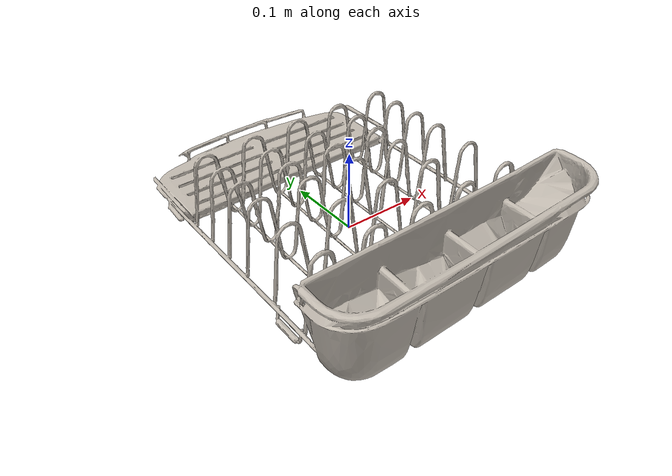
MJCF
<mujoco model="model">
  <default>
    <default class="visual">
      <geom group="2" type="mesh" contype="0" conaffinity="0"/>
    </default>
    <default class="collision">
      <geom group="3" type="mesh"/>
    </default>
  </default>
  <asset>
    <texture type="2d" name="texture" file="texture.png"/>
    <material name="material_0" texture="texture" specular="0.5" shininess="0.5"/>
    <mesh file="model.obj"/>
    <mesh file="model_collision_0.obj"/>
    <mesh file="model_collision_1.obj"/>
    <mesh file="model_collision_2.obj"/>
    <mesh file="model_collision_3.obj"/>
    <mesh file="model_collision_4.obj"/>
    <mesh file="model_collision_5.obj"/>
    <mesh file="model_collision_6.obj"/>
    <mesh file="model_collision_7.obj"/>
    <mesh file="model_collision_8.obj"/>
    <mesh file="model_collision_9.obj"/>
    <mesh file="model_collision_10.obj"/>
    <mesh file="model_collision_11.obj"/>
    <mesh file="model_collision_12.obj"/>
    <mesh file="model_collision_13.obj"/>
    <mesh file="model_collision_14.obj"/>
    <mesh file="model_collision_15.obj"/>
    <mesh file="model_collision_16.obj"/>
    <mesh file="model_collision_17.obj"/>
    <mesh file="model_collision_18.obj"/>
    <mesh file="model_collision_19.obj"/>
    <mesh file="model_collision_20.obj"/>
    <mesh file="model_collision_21.obj"/>
    <mesh file="model_collision_22.obj"/>
    <mesh file="model_collision_23.obj"/>
    <mesh file="model_collision_24.obj"/>
    <mesh file="model_collision_25.obj"/>
    <mesh file="model_collision_26.obj"/>
    <mesh file="model_collision_27.obj"/>
    <mesh file="model_collision_28.obj"/>
    <mesh file="model_collision_29.obj"/>
    <mesh file="model_collision_30.obj"/>
    <mesh file="model_collision_31.obj"/>
    <mesh file="model_collision_32.obj"/>
    <mesh file="model_collision_33.obj"/>
    <mesh file="model_collision_34.obj"/>
    <mesh file="model_collision_35.obj"/>
    <mesh file="model_collision_36.obj"/>
    <mesh file="model_collision_37.obj"/>
    <mesh file="model_collision_38.obj"/>
    <mesh file="model_collision_39.obj"/>
    <mesh file="model_collision_40.obj"/>
    <mesh file="model_collision_41.obj"/>
    <mesh file="model_collision_42.obj"/>
    <mesh file="model_collision_43.obj"/>
    <mesh file="model_collision_44.obj"/>
    <mesh file="model_collision_45.obj"/>
    <mesh file="model_collision_46.obj"/>
    <mesh file="model_collision_47.obj"/>
    <mesh file="model_collision_48.obj"/>
    <mesh file="model_collision_49.obj"/>
    <mesh file="model_collision_50.obj"/>
    <mesh file="model_collision_51.obj"/>
    <mesh file="model_collision_52.obj"/>
    <mesh file="model_collision_53.obj"/>
    <mesh file="model_collision_54.obj"/>
    <mesh file="model_collision_55.obj"/>
    <mesh file="model_collision_56.obj"/>
    <mesh file="model_collision_57.obj"/>
    <mesh file="model_collision_58.obj"/>
    <mesh file="model_collision_59.obj"/>
    <mesh file="model_collision_60.obj"/>
    <mesh file="model_collision_61.obj"/>
    <mesh file="model_collision_62.obj"/>
    <mesh file="model_collision_63.obj"/>
    <mesh file="model_collision_64.obj"/>
    <mesh file="model_collision_65.obj"/>
    <mesh file="model_collision_66.obj"/>
    <mesh file="model_collision_67.obj"/>
    <mesh file="model_collision_68.obj"/>
    <mesh file="model_collision_69.obj"/>
    <mesh file="model_collision_70.obj"/>
    <mesh file="model_collision_71.obj"/>
    <mesh file="model_collision_72.obj"/>
    <mesh file="model_collision_73.obj"/>
    <mesh file="model_collision_74.obj"/>
    <mesh file="model_collision_75.obj"/>
    <mesh file="model_collision_76.obj"/>
    <mesh file="model_collision_77.obj"/>
    <mesh file="model_collision_78.obj"/>
    <mesh file="model_collision_79.obj"/>
    <mesh file="model_collision_80.obj"/>
    <mesh file="model_collision_81.obj"/>
    <mesh file="model_collision_82.obj"/>
    <mesh file="model_collision_83.obj"/>
    <mesh file="model_collision_84.obj"/>
    <mesh file="model_collision_85.obj"/>
    <mesh file="model_collision_86.obj"/>
    <mesh file="model_collision_87.obj"/>
    <mesh file="model_collision_88.obj"/>
    <mesh file="model_collision_89.obj"/>
    <mesh file="model_collision_90.obj"/>
    <mesh file="model_collision_91.obj"/>
    <mesh file="model_collision_92.obj"/>
    <mesh file="model_collision_93.obj"/>
    <mesh file="model_collision_94.obj"/>
    <mesh file="model_collision_95.obj"/>
    <mesh file="model_collision_96.obj"/>
    <mesh file="model_collision_97.obj"/>
    <mesh file="model_collision_98.obj"/>
    <mesh file="model_collision_99.obj"/>
    <mesh file="model_collision_100.obj"/>
    <mesh file="model_collision_101.obj"/>
    <mesh file="model_collision_102.obj"/>
    <mesh file="model_collision_103.obj"/>
    <mesh file="model_collision_104.obj"/>
    <mesh file="model_collision_105.obj"/>
    <mesh file="model_collision_106.obj"/>
    <mesh file="model_collision_107.obj"/>
    <mesh file="model_collision_108.obj"/>
    <mesh file="model_collision_109.obj"/>
    <mesh file="model_collision_110.obj"/>
    <mesh file="model_collision_111.obj"/>
    <mesh file="model_collision_112.obj"/>
    <mesh file="model_collision_113.obj"/>
    <mesh file="model_collision_114.obj"/>
    <mesh file="model_collision_115.obj"/>
    <mesh file="model_collision_116.obj"/>
    <mesh file="model_collision_117.obj"/>
    <mesh file="model_collision_118.obj"/>
    <mesh file="model_collision_119.obj"/>
    <mesh file="model_collision_120.obj"/>
    <mesh file="model_collision_121.obj"/>
    <mesh file="model_collision_122.obj"/>
    <mesh file="model_collision_123.obj"/>
    <mesh file="model_collision_124.obj"/>
    <mesh file="model_collision_125.obj"/>
    <mesh file="model_collision_126.obj"/>
    <mesh file="model_collision_127.obj"/>
    <mesh file="model_collision_128.obj"/>
    <mesh file="model_collision_129.obj"/>
    <mesh file="model_collision_130.obj"/>
    <mesh file="model_collision_131.obj"/>
    <mesh file="model_collision_132.obj"/>
    <mesh file="model_collision_133.obj"/>
    <mesh file="model_collision_134.obj"/>
    <mesh file="model_collision_135.obj"/>
    <mesh file="model_collision_136.obj"/>
    <mesh file="model_collision_137.obj"/>
    <mesh file="model_collision_138.obj"/>
    <mesh file="model_collision_139.obj"/>
    <mesh file="model_collision_140.obj"/>
    <mesh file="model_collision_141.obj"/>
    <mesh file="model_collision_142.obj"/>
    <mesh file="model_collision_143.obj"/>
    <mesh file="model_collision_144.obj"/>
    <mesh file="model_collision_145.obj"/>
    <mesh file="model_collision_146.obj"/>
    <mesh file="model_collision_147.obj"/>
    <mesh file="model_collision_148.obj"/>
  </asset>
  <worldbody>
    <body name="model">
      <freejoint/>
      <geom material="material_0" mesh="model" class="visual"/>
      <geom mesh="model_collision_0" rgba="0.6972261375620378 0.5016032488889515 0.9544041945124212 1" class="collision"/>
      <geom mesh="model_collision_1" rgba="0.6679679687793443 0.9392575528685594 0.4658735522799946 1" class="collision"/>
      <geom mesh="model_collision_2" rgba="0.1453827029904502 0.40744092845967517 0.07989793138121593 1" class="collision"/>
      <geom mesh="model_collision_3" rgba="0.8623111466422981 0.5165504551971322 0.4786232503171015 1" class="collision"/>
      <geom mesh="model_collision_4" rgba="0.9477083832529426 0.2818664488945466 0.5591723239383094 1" class="collision"/>
      <geom mesh="model_collision_5" rgba="0.6649166843170055 0.46660913463735343 0.9001685042311807 1" class="collision"/>
      <geom mesh="model_collision_6" rgba="0.7618692108988531 0.025419864045153173 0.20212448867446653 1" class="collision"/>
      <geom mesh="model_collision_7" rgba="0.2541425772433271 0.33284124666160697 0.06684828904093454 1" class="collision"/>
      <geom mesh="model_collision_8" rgba="0.8638790279399763 0.31008286049438805 0.9582214352043337 1" class="collision"/>
      <geom mesh="model_collision_9" rgba="0.8481403126513923 0.9899220244255867 0.9012400029475611 1" class="collision"/>
      <geom mesh="model_collision_10" rgba="0.6134601114526506 0.7812644838409764 0.3425945387360996 1" class="collision"/>
      <geom mesh="model_collision_11" rgba="0.22218953819966847 0.48938572658495916 0.6525231487523216 1" class="collision"/>
      <geom mesh="model_collision_12" rgba="0.3588326889222123 0.43330550626239617 0.6936918167777775 1" class="collision"/>
      <geom mesh="model_collision_13" rgba="0.15888932649153653 0.8650773636531605 0.11426669520568222 1" class="collision"/>
      <geom mesh="model_collision_14" rgba="0.9250375333283071 0.07516812131073125 0.19751444527300777 1" class="collision"/>
      <geom mesh="model_collision_15" rgba="0.07246994567382936 0.35354141400302286 0.713251328649467 1" class="collision"/>
      <geom mesh="model_collision_16" rgba="0.4518314905981151 0.4932898268777104 0.2788270548570283 1" class="collision"/>
      <geom mesh="model_collision_17" rgba="0.33025591188166237 0.02781623422873869 0.9035735388902696 1" class="collision"/>
      <geom mesh="model_collision_18" rgba="0.5029580158179299 0.07501793642183574 0.3803501553092181 1" class="collision"/>
      <geom mesh="model_collision_19" rgba="0.6785499068048587 0.8824265279602951 0.35854888292898 1" class="collision"/>
      <geom mesh="model_collision_20" rgba="0.844260551131747 0.19743789087942176 0.20911812181464562 1" class="collision"/>
      <geom mesh="model_collision_21" rgba="0.21577350747526935 0.17852052779522376 0.02824911956603826 1" class="collision"/>
      <geom mesh="model_collision_22" rgba="0.6414843260022598 0.4473457458538098 0.997136404003651 1" class="collision"/>
      <geom mesh="model_collision_23" rgba="0.17705400973425367 0.47513840779608796 0.27507588908811365 1" class="collision"/>
      <geom mesh="model_collision_24" rgba="0.8613287846550189 0.4703512380765029 0.5271169994660593 1" class="collision"/>
      <geom mesh="model_collision_25" rgba="0.0854319196957325 0.06511398391837975 0.8910437634154694 1" class="collision"/>
      <geom mesh="model_collision_26" rgba="0.1129412149541611 0.388796699795228 0.8386258379992236 1" class="collision"/>
      <geom mesh="model_collision_27" rgba="0.313775413922613 0.8458137608777493 0.7441178856053182 1" class="collision"/>
      <geom mesh="model_collision_28" rgba="0.5916768148280449 0.9131771642044771 0.7155328990905656 1" class="collision"/>
      <geom mesh="model_collision_29" rgba="0.3758301953558243 0.6151654270821959 0.17883319599354097 1" class="collision"/>
      <geom mesh="model_collision_30" rgba="0.9005395457589973 0.12893772935001835 0.8399084775797421 1" class="collision"/>
      <geom mesh="model_collision_31" rgba="0.5761321374345145 0.5062650580779895 0.5969410067920444 1" class="collision"/>
      <geom mesh="model_collision_32" rgba="0.33120795289454585 0.0548958740351394 0.10588709839794219 1" class="collision"/>
      <geom mesh="model_collision_33" rgba="0.9828209401497767 0.11625597893137263 0.6464528730212972 1" class="collision"/>
      <geom mesh="model_collision_34" rgba="0.9065059034983243 0.8749440861832476 0.27937757995783163 1" class="collision"/>
      <geom mesh="model_collision_35" rgba="0.8093791386906711 0.34250170802189206 0.5529135935940146 1" class="collision"/>
      <geom mesh="model_collision_36" rgba="0.27278188270013715 0.4742089855848517 0.3676420535177872 1" class="collision"/>
      <geom mesh="model_collision_37" rgba="0.6002530576285366 0.9465858944329743 0.66512388474011 1" class="collision"/>
      <geom mesh="model_collision_38" rgba="0.9622239105259734 0.09627881367820457 0.08296348672930132 1" class="collision"/>
      <geom mesh="model_collision_39" rgba="0.964561287196177 0.27153199099186975 0.8577485566950843 1" class="collision"/>
      <geom mesh="model_collision_40" rgba="0.6190955863942912 0.49805554171619604 0.7790044453946614 1" class="collision"/>
      <geom mesh="model_collision_41" rgba="0.6132532408483207 0.1638040912207669 0.9847355649734942 1" class="collision"/>
      <geom mesh="model_collision_42" rgba="0.9001829213739782 0.7596760145443623 0.3935474744991997 1" class="collision"/>
      <geom mesh="model_collision_43" rgba="0.7419923764852715 0.9716106597268732 0.078888109275144 1" class="collision"/>
      <geom mesh="model_collision_44" rgba="0.3011874149822188 0.145236394185694 0.23604809186698583 1" class="collision"/>
      <geom mesh="model_collision_45" rgba="0.17821690177742167 0.16059923404084175 0.09414998707256172 1" class="collision"/>
      <geom mesh="model_collision_46" rgba="0.8331798237799519 0.718695851533787 0.11462644266890598 1" class="collision"/>
      <geom mesh="model_collision_47" rgba="0.9445108755427497 0.414888252407413 0.3411241048436212 1" class="collision"/>
      <geom mesh="model_collision_48" rgba="0.8975411413666976 0.5739936592303218 0.9181648509110809 1" class="collision"/>
      <geom mesh="model_collision_49" rgba="0.08176544643495931 0.22602472542661467 0.15005458895364043 1" class="collision"/>
      <geom mesh="model_collision_50" rgba="0.12099596406027024 0.34881206709163803 0.2422438688268186 1" class="collision"/>
      <geom mesh="model_collision_51" rgba="0.7504684268004972 0.6484879226586683 0.794659471677448 1" class="collision"/>
      <geom mesh="model_collision_52" rgba="0.1724229704493596 0.7730452270134275 0.4102404161939135 1" class="collision"/>
      <geom mesh="model_collision_53" rgba="0.2951858288855326 0.33806457158827685 0.22992220086938964 1" class="collision"/>
      <geom mesh="model_collision_54" rgba="0.33750633947939424 0.045416067351773615 0.35211098319953316 1" class="collision"/>
      <geom mesh="model_collision_55" rgba="0.026547414981266892 0.2528398580927268 0.014132317461738153 1" class="collision"/>
      <geom mesh="model_collision_56" rgba="0.5427557366195045 0.1884350839691702 0.47057270279949137 1" class="collision"/>
      <geom mesh="model_collision_57" rgba="0.2868993528416218 0.06439563505937163 0.3574960603295505 1" class="collision"/>
      <geom mesh="model_collision_58" rgba="0.013626077145462712 0.32964500504287875 0.6814664192141161 1" class="collision"/>
      <geom mesh="model_collision_59" rgba="0.9969127238797 0.5947732832160904 0.5316727531090848 1" class="collision"/>
      <geom mesh="model_collision_60" rgba="0.6295061889366976 0.08297554421157727 0.8488956327741239 1" class="collision"/>
      <geom mesh="model_collision_61" rgba="0.045164081593684346 0.93501672529977 0.3018216151017771 1" class="collision"/>
      <geom mesh="model_collision_62" rgba="0.8733053705158748 0.6944804134286671 0.029112987974145854 1" class="collision"/>
      <geom mesh="model_collision_63" rgba="0.21136443491644974 0.04849400970304507 0.8835679800229232 1" class="collision"/>
      <geom mesh="model_collision_64" rgba="0.8880932522261956 0.5275483831517188 0.38077037276610315 1" class="collision"/>
      <geom mesh="model_collision_65" rgba="0.6597198005867346 0.22690279756328524 0.7400519871721775 1" class="collision"/>
      <geom mesh="model_collision_66" rgba="0.20017831325965585 0.8989640865508659 0.6648845212410102 1" class="collision"/>
      <geom mesh="model_collision_67" rgba="0.9078301678016731 0.010281528281195218 0.010421892924430187 1" class="collision"/>
      <geom mesh="model_collision_68" rgba="0.3040140412675675 0.42495531985494084 0.45179891281131934 1" class="collision"/>
      <geom mesh="model_collision_69" rgba="0.7562908939872045 0.7760166538766727 0.8078570064983668 1" class="collision"/>
      <geom mesh="model_collision_70" rgba="0.24878794349540712 0.8781618506923999 0.8616474903650716 1" class="collision"/>
      <geom mesh="model_collision_71" rgba="0.9045719238981659 0.6449515373468735 0.5471408359865635 1" class="collision"/>
      <geom mesh="model_collision_72" rgba="0.7433267223003542 0.1913418564260294 0.16728253783231473 1" class="collision"/>
      <geom mesh="model_collision_73" rgba="0.4426353473222209 0.9291916542643494 0.18053069699637136 1" class="collision"/>
      <geom mesh="model_collision_74" rgba="0.22658833486459717 0.3868247652865041 0.3954157453447765 1" class="collision"/>
      <geom mesh="model_collision_75" rgba="0.5243174625243328 0.7049320361644683 0.08061474650413192 1" class="collision"/>
      <geom mesh="model_collision_76" rgba="0.4788671360844684 0.03555927614988086 0.2834742872582522 1" class="collision"/>
      <geom mesh="model_collision_77" rgba="0.06255161169471779 0.8033825146634297 0.06533743934761493 1" class="collision"/>
      <geom mesh="model_collision_78" rgba="0.7130856735370245 0.5581220223213339 0.2506520331184019 1" class="collision"/>
      <geom mesh="model_collision_79" rgba="0.07585477867226686 0.0786195438444085 0.061770855102391664 1" class="collision"/>
      <geom mesh="model_collision_80" rgba="0.053570934711890006 0.9061357181481213 0.8817976658532223 1" class="collision"/>
      <geom mesh="model_collision_81" rgba="0.14527100472615506 0.5811063854152668 0.7714761284538454 1" class="collision"/>
      <geom mesh="model_collision_82" rgba="0.31660555466912577 0.7455403988440888 0.8611028949116978 1" class="collision"/>
      <geom mesh="model_collision_83" rgba="0.5685320754386652 0.7076365974533664 0.22510259508234254 1" class="collision"/>
      <geom mesh="model_collision_84" rgba="0.23498890700435637 0.6819933326250506 0.43284741040337416 1" class="collision"/>
      <geom mesh="model_collision_85" rgba="0.5594665228891356 0.8805685911307488 0.2776741602721027 1" class="collision"/>
      <geom mesh="model_collision_86" rgba="0.9020459807879689 0.7427845111389061 0.613336057850989 1" class="collision"/>
      <geom mesh="model_collision_87" rgba="0.8048850121083805 0.6746376691374479 0.8581043822030836 1" class="collision"/>
      <geom mesh="model_collision_88" rgba="0.32728398144746695 0.268357246562983 0.4116011278299716 1" class="collision"/>
      <geom mesh="model_collision_89" rgba="0.37243513768872294 0.7180062734972774 0.0005555640721066624 1" class="collision"/>
      <geom mesh="model_collision_90" rgba="0.32362257237983816 0.4507574839238022 0.9701761034823226 1" class="collision"/>
      <geom mesh="model_collision_91" rgba="0.5073732541453527 0.41567138755049227 0.7459480916705709 1" class="collision"/>
      <geom mesh="model_collision_92" rgba="0.5436930572567479 0.8684013024234336 0.8507460777438958 1" class="collision"/>
      <geom mesh="model_collision_93" rgba="0.27582139561278485 0.9522774773187517 0.34321981884103514 1" class="collision"/>
      <geom mesh="model_collision_94" rgba="0.6773241010738105 0.16588501184983373 0.3577607467088548 1" class="collision"/>
      <geom mesh="model_collision_95" rgba="0.2884232771547539 0.9946402498636319 0.6451535574073085 1" class="collision"/>
      <geom mesh="model_collision_96" rgba="0.5255540695090651 0.8812319726131923 0.20472193484909462 1" class="collision"/>
      <geom mesh="model_collision_97" rgba="0.08849620353677556 0.36072985120095546 0.7332219578200269 1" class="collision"/>
      <geom mesh="model_collision_98" rgba="0.4509774228964646 0.87460762824602 0.816069183032847 1" class="collision"/>
      <geom mesh="model_collision_99" rgba="0.18697389497902095 0.7788342877903928 0.02395150000437285 1" class="collision"/>
      <geom mesh="model_collision_100" rgba="0.06026664102269497 0.3412128558901769 0.6748549139833601 1" class="collision"/>
      <geom mesh="model_collision_101" rgba="0.8613518340082451 0.6982367721609533 0.5758382807857484 1" class="collision"/>
      <geom mesh="model_collision_102" rgba="0.6565724484607157 0.7263981893880217 0.3135872092953028 1" class="collision"/>
      <geom mesh="model_collision_103" rgba="0.8118436602942185 0.5116215730101121 0.40112185877672557 1" class="collision"/>
      <geom mesh="model_collision_104" rgba="0.8008156439029674 0.11370369849124329 0.3867598861956215 1" class="collision"/>
      <geom mesh="model_collision_105" rgba="0.9056542779624834 0.11277231626814821 0.45267718288098646 1" class="collision"/>
      <geom mesh="model_collision_106" rgba="0.1288266370392923 0.37053257699537034 0.36455724038093384 1" class="collision"/>
      <geom mesh="model_collision_107" rgba="0.7049485424056569 0.31492174106147197 0.5780966381077157 1" class="collision"/>
      <geom mesh="model_collision_108" rgba="0.7372986903300383 0.30074832892208436 0.730868172445195 1" class="collision"/>
      <geom mesh="model_collision_109" rgba="0.6007850280198244 0.10358395355692473 0.871230435288503 1" class="collision"/>
      <geom mesh="model_collision_110" rgba="0.28042865200694167 0.9962394483216953 0.733344436847341 1" class="collision"/>
      <geom mesh="model_collision_111" rgba="0.45926174716443624 0.9372832945697276 0.8640744582885566 1" class="collision"/>
      <geom mesh="model_collision_112" rgba="0.5719065439227329 0.864310976578738 0.5318470170024203 1" class="collision"/>
      <geom mesh="model_collision_113" rgba="0.05334887874887406 0.1477440843946961 0.989907057899275 1" class="collision"/>
      <geom mesh="model_collision_114" rgba="0.034445638856828165 0.9828085276700996 0.08179693657752973 1" class="collision"/>
      <geom mesh="model_collision_115" rgba="0.8988359259116201 0.18802334101451224 0.1619266981617199 1" class="collision"/>
      <geom mesh="model_collision_116" rgba="0.2751873534847171 0.05850301019699311 0.7658802994595343 1" class="collision"/>
      <geom mesh="model_collision_117" rgba="0.08251740575538513 0.6877594209735777 0.7980931027743644 1" class="collision"/>
      <geom mesh="model_collision_118" rgba="0.7714376803746562 0.15762717974261464 0.660934519901243 1" class="collision"/>
      <geom mesh="model_collision_119" rgba="0.5347788114277596 0.021028018731317655 0.18561743074250603 1" class="collision"/>
      <geom mesh="model_collision_120" rgba="0.5629406036440016 0.7699056683445016 0.503937635273826 1" class="collision"/>
      <geom mesh="model_collision_121" rgba="0.24165316880869658 0.6570573273438985 0.9089178599081822 1" class="collision"/>
      <geom mesh="model_collision_122" rgba="0.20420163395408075 0.09006027021433716 0.7923541268357888 1" class="collision"/>
      <geom mesh="model_collision_123" rgba="0.8718618340420103 0.8284547146301533 0.48182267828242975 1" class="collision"/>
      <geom mesh="model_collision_124" rgba="0.37067158993517135 0.33795417830722696 0.0024988231648457315 1" class="collision"/>
      <geom mesh="model_collision_125" rgba="0.6144946200979579 0.021443257126651294 0.8041789931475011 1" class="collision"/>
      <geom mesh="model_collision_126" rgba="0.8131432476179293 0.20312030240617673 0.7934257574441185 1" class="collision"/>
      <geom mesh="model_collision_127" rgba="0.9989081063855229 0.24832640664820216 0.4130745422226155 1" class="collision"/>
      <geom mesh="model_collision_128" rgba="0.893495859335113 0.9260040566139368 0.5906779143649219 1" class="collision"/>
      <geom mesh="model_collision_129" rgba="0.3767372602009922 0.3326349869852454 0.3432987601890495 1" class="collision"/>
      <geom mesh="model_collision_130" rgba="0.5983591953026466 0.4711521910803499 0.5102014280458288 1" class="collision"/>
      <geom mesh="model_collision_131" rgba="0.921778978688059 0.3068433640629922 0.11293577204300365 1" class="collision"/>
      <geom mesh="model_collision_132" rgba="0.5517755190258555 0.25436453892063293 0.5142638210983317 1" class="collision"/>
      <geom mesh="model_collision_133" rgba="0.11154595747291729 0.23340709574506735 0.8239967791170365 1" class="collision"/>
      <geom mesh="model_collision_134" rgba="0.5744418742696585 0.7505906198128206 0.7828925946008167 1" class="collision"/>
      <geom mesh="model_collision_135" rgba="0.2760960228827516 0.8519361901575313 0.44607132684499096 1" class="collision"/>
      <geom mesh="model_collision_136" rgba="0.17910043603530834 0.6511648311971685 0.31284942037460983 1" class="collision"/>
      <geom mesh="model_collision_137" rgba="0.4675687838545042 0.9095593442673057 0.5701526809948813 1" class="collision"/>
      <geom mesh="model_collision_138" rgba="0.3620342560803207 0.10626597618494915 0.2781056202094915 1" class="collision"/>
      <geom mesh="model_collision_139" rgba="0.32102617028504565 0.3552393867995238 0.39067989111415946 1" class="collision"/>
      <geom mesh="model_collision_140" rgba="0.06597885212456855 0.7045874660037604 0.9635973194043023 1" class="collision"/>
      <geom mesh="model_collision_141" rgba="0.1826879947512836 0.4998895738850069 0.026238858882629446 1" class="collision"/>
      <geom mesh="model_collision_142" rgba="0.2866783836855492 0.5603816141232597 0.5808695056405584 1" class="collision"/>
      <geom mesh="model_collision_143" rgba="0.6558616314688709 0.09154257506871033 0.14103399998965005 1" class="collision"/>
      <geom mesh="model_collision_144" rgba="0.8075438026295747 0.7172228436186345 0.8357653764033085 1" class="collision"/>
      <geom mesh="model_collision_145" rgba="0.5782004590803334 0.8317566357518187 0.6106203166269413 1" class="collision"/>
      <geom mesh="model_collision_146" rgba="0.7753361237730388 0.7269041579008257 0.821680893676305 1" class="collision"/>
      <geom mesh="model_collision_147" rgba="0.6096700060704208 0.8058416178526357 0.31786366744029915 1" class="collision"/>
      <geom mesh="model_collision_148" rgba="0.9634988755367206 0.3971391237797236 0.6777907602064234 1" class="collision"/>
    </body>
  </worldbody>
</mujoco>
